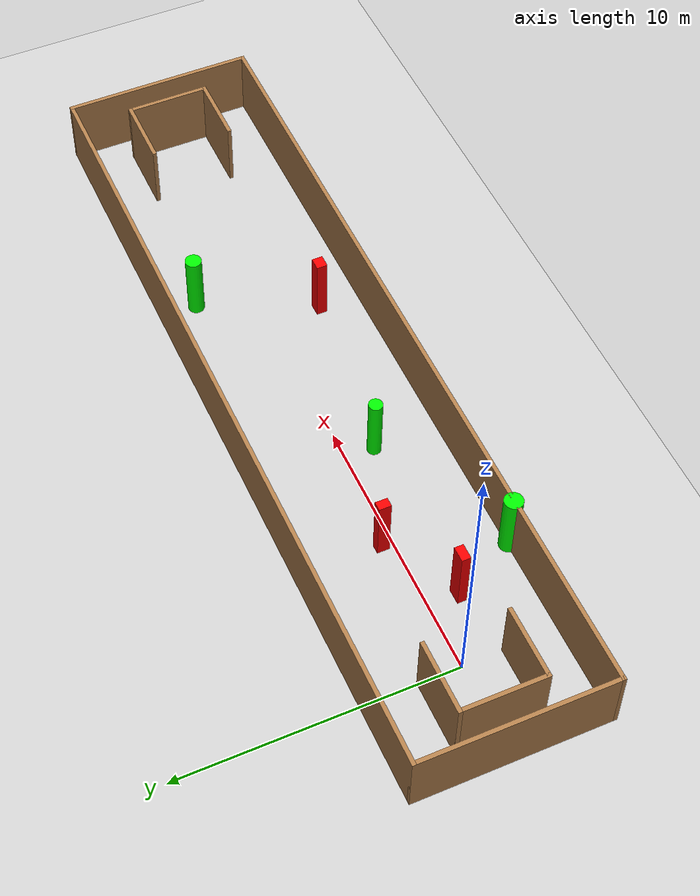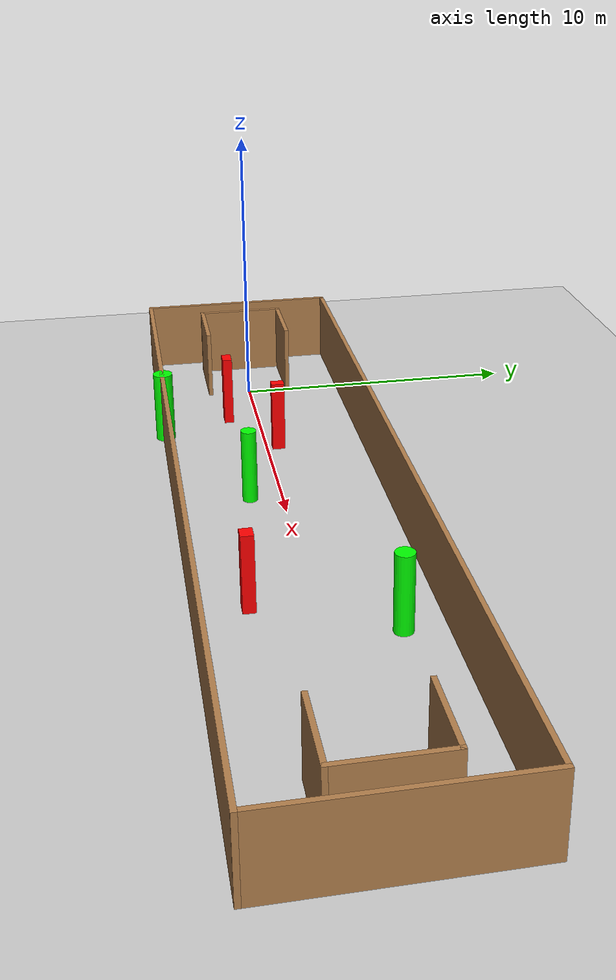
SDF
<sdf version="1.7">
 <world name="default">
  <light name="sun" type="directional">
   <pose>0 0 10 0 -0 0</pose>
   <diffuse>0.8 0.8 0.8 1</diffuse>
   <specular>0.2 0.2 0.2 1</specular>
   <attenuation>
    <range>1000</range>
    <constant>0.9</constant>
    <linear>0.01</linear>
    <quadratic>0.001</quadratic>
   </attenuation>
   <direction>-0.5 0.1 -0.9</direction>
   <spot><inner_angle>0</inner_angle><outer_angle>0</outer_angle><falloff>0</falloff></spot>
  </light>
  <model name="ground_plane">
   <static>1</static>
   <link name="link">
    <collision name="collision">
     <geometry><plane><normal>0 0 1</normal><size>100 100</size></plane></geometry>
     <surface>
      <contact><collide_bitmask>65535</collide_bitmask></contact>
      <friction><ode><mu>100</mu><mu2>50</mu2></ode></friction>
     </surface>
    </collision>
    <visual name="visual">
     <cast_shadows>0</cast_shadows>
     <geometry><plane><normal>0 0 1</normal><size>100 100</size></plane></geometry>
     <material>
      <script><uri>file://media/materials/scripts/gazebo.material</uri><name>Gazebo/Grey</name></script>
     </material>
    </visual>
   </link>
  </model>
  <gravity>0 0 -9.8</gravity>
  <magnetic_field>6e-06 2.3e-05 -4.2e-05</magnetic_field>
  <atmosphere type="adiabatic"/>
  <physics type="ode">
   <max_step_size>0.001</max_step_size>
   <real_time_factor>1</real_time_factor>
   <real_time_update_rate>1000</real_time_update_rate>
  </physics>
  <scene><ambient>0.4 0.4 0.4 1</ambient><background>0.7 0.7 0.7 1</background><shadows>1</shadows></scene>
  <spherical_coordinates>
   <surface_model>EARTH_WGS84</surface_model>
   <latitude_deg>0</latitude_deg>
   <longitude_deg>0</longitude_deg>
   <elevation>0</elevation>
   <heading_deg>0</heading_deg>
  </spherical_coordinates>
  <model name="my_base_walls">
   <link name="Wall_0">
    <collision name="Wall_0_Collision">
     <geometry><box><size>7.15 0.15 2.5</size></box></geometry>
     <pose>0 0 1.25 0 -0 0</pose>
    </collision>
    <visual name="Wall_0_Visual">
     <pose>0 0 1.25 0 -0 0</pose>
     <geometry><box><size>7.15 0.15 2.5</size></box></geometry>
     <material>
      <script><uri>file://media/materials/scripts/gazebo.material</uri><name>Gazebo/Wood</name></script>
      <ambient>1 1 1 1</ambient>
     </material>
     <meta><layer>0</layer></meta>
    </visual>
    <pose>-15 0 0 0 -0 1.5708</pose>
   </link>
   <link name="Wall_10">
    <collision name="Wall_10_Collision">
     <geometry><box><size>2.65 0.15 2.5</size></box></geometry>
     <pose>0 0 1.25 0 -0 0</pose>
    </collision>
    <visual name="Wall_10_Visual">
     <pose>0 0 1.25 0 -0 0</pose>
     <geometry><box><size>2.65 0.15 2.5</size></box></geometry>
     <material>
      <script><uri>file://media/materials/scripts/gazebo.material</uri><name>Gazebo/Wood</name></script>
      <ambient>1 1 1 1</ambient>
     </material>
     <meta><layer>0</layer></meta>
    </visual>
    <pose>-12.75 -1.5 0 0 -0 0</pose>
   </link>
   <link name="Wall_12">
    <collision name="Wall_12_Collision">
     <geometry><box><size>2.65 0.15 2.5</size></box></geometry>
     <pose>0 0 1.25 0 -0 0</pose>
    </collision>
    <visual name="Wall_12_Visual">
     <pose>0 0 1.25 0 -0 0</pose>
     <geometry><box><size>2.65 0.15 2.5</size></box></geometry>
     <material>
      <script><uri>file://media/materials/scripts/gazebo.material</uri><name>Gazebo/Wood</name></script>
      <ambient>1 1 1 1</ambient>
     </material>
     <meta><layer>0</layer></meta>
    </visual>
    <pose>-12.75 1.5 0 0 -0 0</pose>
   </link>
   <link name="Wall_14">
    <collision name="Wall_14_Collision">
     <geometry><box><size>3.15 0.15 2.5</size></box></geometry>
     <pose>0 0 1.25 0 -0 0</pose>
    </collision>
    <visual name="Wall_14_Visual">
     <pose>0 0 1.25 0 -0 0</pose>
     <geometry><box><size>3.15 0.15 2.5</size></box></geometry>
     <material>
      <script><uri>file://media/materials/scripts/gazebo.material</uri><name>Gazebo/Wood</name></script>
      <ambient>1 1 1 1</ambient>
     </material>
     <meta><layer>0</layer></meta>
    </visual>
    <pose>14 0 0 0 -0 -1.5708</pose>
   </link>
   <link name="Wall_15">
    <collision name="Wall_15_Collision">
     <geometry><box><size>2.65 0.15 2.5</size></box></geometry>
     <pose>0 0 1.25 0 -0 0</pose>
    </collision>
    <visual name="Wall_15_Visual">
     <pose>0 0 1.25 0 -0 0</pose>
     <geometry><box><size>2.65 0.15 2.5</size></box></geometry>
     <material>
      <script><uri>file://media/materials/scripts/gazebo.material</uri><name>Gazebo/Wood</name></script>
      <ambient>1 1 1 1</ambient>
     </material>
     <meta><layer>0</layer></meta>
    </visual>
    <pose>12.75 -1.5 0 0 -0 3.14159</pose>
   </link>
   <link name="Wall_17">
    <collision name="Wall_17_Collision">
     <geometry><box><size>2.65 0.15 2.5</size></box></geometry>
     <pose>0 0 1.25 0 -0 0</pose>
    </collision>
    <visual name="Wall_17_Visual">
     <pose>0 0 1.25 0 -0 0</pose>
     <geometry><box><size>2.65 0.15 2.5</size></box></geometry>
     <material>
      <script><uri>file://media/materials/scripts/gazebo.material</uri><name>Gazebo/Wood</name></script>
      <ambient>1 1 1 1</ambient>
     </material>
     <meta><layer>0</layer></meta>
    </visual>
    <pose>12.75 1.5 0 0 -0 3.14159</pose>
   </link>
   <link name="Wall_2">
    <collision name="Wall_2_Collision">
     <geometry><box><size>30.15 0.15 2.5</size></box></geometry>
     <pose>0 0 1.25 0 -0 0</pose>
    </collision>
    <visual name="Wall_2_Visual">
     <pose>0 0 1.25 0 -0 0</pose>
     <geometry><box><size>30.15 0.15 2.5</size></box></geometry>
     <material>
      <script><uri>file://media/materials/scripts/gazebo.material</uri><name>Gazebo/Wood</name></script>
      <ambient>1 1 1 1</ambient>
     </material>
     <meta><layer>0</layer></meta>
    </visual>
    <pose>-0 -3.5 0 0 -0 0</pose>
   </link>
   <link name="Wall_4">
    <collision name="Wall_4_Collision">
     <geometry><box><size>30.15 0.15 2.5</size></box></geometry>
     <pose>0 0 1.25 0 -0 0</pose>
    </collision>
    <visual name="Wall_4_Visual">
     <pose>0 0 1.25 0 -0 0</pose>
     <geometry><box><size>30.15 0.15 2.5</size></box></geometry>
     <material>
      <script><uri>file://media/materials/scripts/gazebo.material</uri><name>Gazebo/Wood</name></script>
      <ambient>1 1 1 1</ambient>
     </material>
     <meta><layer>0</layer></meta>
    </visual>
    <pose>-0 3.5 0 0 -0 0</pose>
   </link>
   <link name="Wall_6">
    <collision name="Wall_6_Collision">
     <geometry><box><size>7.15 0.15 2.5</size></box></geometry>
     <pose>0 0 1.25 0 -0 0</pose>
    </collision>
    <visual name="Wall_6_Visual">
     <pose>0 0 1.25 0 -0 0</pose>
     <geometry><box><size>7.15 0.15 2.5</size></box></geometry>
     <material>
      <script><uri>file://media/materials/scripts/gazebo.material</uri><name>Gazebo/Wood</name></script>
      <ambient>1 1 1 1</ambient>
     </material>
     <meta><layer>0</layer></meta>
    </visual>
    <pose>15 0 0 0 -0 -1.5708</pose>
   </link>
   <link name="Wall_9">
    <collision name="Wall_9_Collision">
     <geometry><box><size>3.15 0.15 2.5</size></box></geometry>
     <pose>0 0 1.25 0 -0 0</pose>
    </collision>
    <visual name="Wall_9_Visual">
     <pose>0 0 1.25 0 -0 0</pose>
     <geometry><box><size>3.15 0.15 2.5</size></box></geometry>
     <material>
      <script><uri>file://media/materials/scripts/gazebo.material</uri><name>Gazebo/Wood</name></script>
      <ambient>1 1 1 1</ambient>
     </material>
     <meta><layer>0</layer></meta>
    </visual>
    <pose>-14 0 0 0 -0 -1.5708</pose>
   </link>
   <static>1</static>
   <pose>11.5 0 0 0 -0 0</pose>
  </model>
  <model name="cylinder1">
   <static>1</static>
   <link name="link">
    <inertial>
     <mass>1</mass>
     <inertia><ixx>0.5</ixx><ixy>0</ixy><ixz>0</ixz><iyy>0.5</iyy><iyz>0</iyz><izz>1</izz></inertia>
    </inertial>
    <collision name="collision">
     <geometry><cylinder><radius>0.3356253164284834</radius><length>2.5</length></cylinder></geometry>
    </collision>
    <visual name="visual">
     <geometry><cylinder><radius>0.3356253164284834</radius><length>2.5</length></cylinder></geometry>
     <material>
      <ambient>0 1 0 1</ambient>
      <diffuse>0 1 0 1</diffuse>
      <specular>0.1 0.1 0.1 1</specular>
      <emissive>0 0 0 0</emissive>
     </material>
    </visual>
   </link>
   <pose>3.587234197666323 -3.4715395986737385 1.25 0 0 0</pose>
  </model>
  <model name="cylinder2">
   <static>1</static>
   <link name="link">
    <inertial>
     <mass>1</mass>
     <inertia><ixx>0.5</ixx><ixy>0</ixy><ixz>0</ixz><iyy>0.5</iyy><iyz>0</iyz><izz>1</izz></inertia>
    </inertial>
    <collision name="collision">
     <geometry><cylinder><radius>0.2516322093124912</radius><length>2.5</length></cylinder></geometry>
    </collision>
    <visual name="visual">
     <geometry><cylinder><radius>0.2516322093124912</radius><length>2.5</length></cylinder></geometry>
     <material>
      <ambient>0 1 0 1</ambient>
      <diffuse>0 1 0 1</diffuse>
      <specular>0.1 0.1 0.1 1</specular>
      <emissive>0 0 0 0</emissive>
     </material>
    </visual>
   </link>
   <pose>8.914396115081832 -1.0553657311784348 1.25 0 0 0</pose>
  </model>
  <model name="cylinder3">
   <static>1</static>
   <link name="link">
    <inertial>
     <mass>1</mass>
     <inertia><ixx>0.5</ixx><ixy>0</ixy><ixz>0</ixz><iyy>0.5</iyy><iyz>0</iyz><izz>1</izz></inertia>
    </inertial>
    <collision name="collision">
     <geometry><cylinder><radius>0.29831329846707844</radius><length>2.5</length></cylinder></geometry>
    </collision>
    <visual name="visual">
     <geometry><cylinder><radius>0.29831329846707844</radius><length>2.5</length></cylinder></geometry>
     <material>
      <ambient>0 1 0 1</ambient>
      <diffuse>0 1 0 1</diffuse>
      <specular>0.1 0.1 0.1 1</specular>
      <emissive>0 0 0 0</emissive>
     </material>
    </visual>
   </link>
   <pose>17.37038243814908 2.1531320842915305 1.25 0 0 0</pose>
  </model>
  <model name="box1">
   <static>1</static>
   <link name="link">
    <inertial>
     <mass>1</mass>
     <inertia><ixx>0.083</ixx><ixy>0</ixy><ixz>0</ixz><iyy>0.083</iyy><iyz>0</iyz><izz>0.083</izz></inertia>
    </inertial>
    <collision name="collision">
     <geometry><box><size>0.5574467269037655 0.3255549505460055 2.5</size></box></geometry>
    </collision>
    <visual name="visual">
     <geometry><box><size>0.5574467269037655 0.3255549505460055 2.5</size></box></geometry>
     <material>
      <ambient>1 0 0 1</ambient>
      <diffuse>1 0 0 1</diffuse>
      <specular>0.1 0.1 0.1 1</specular>
      <emissive>0 0 0 0</emissive>
     </material>
    </visual>
    <sensor name="my_contact" type="contact">
     <contact><collision>box_collision</collision><topic>__default_topic__</topic></contact>
    </sensor>
   </link>
   <pose>2.4618173336027844 -1.0742555438740715 1.25 0 0 0</pose>
  </model>
  <model name="box2">
   <static>1</static>
   <link name="link">
    <inertial>
     <mass>1</mass>
     <inertia><ixx>0.083</ixx><ixy>0</ixy><ixz>0</ixz><iyy>0.083</iyy><iyz>0</iyz><izz>0.083</izz></inertia>
    </inertial>
    <collision name="collision">
     <geometry><box><size>0.33008184543761576 0.4444364609028549 2.5</size></box></geometry>
    </collision>
    <visual name="visual">
     <geometry><box><size>0.33008184543761576 0.4444364609028549 2.5</size></box></geometry>
     <material>
      <ambient>1 0 0 1</ambient>
      <diffuse>1 0 0 1</diffuse>
      <specular>0.1 0.1 0.1 1</specular>
      <emissive>0 0 0 0</emissive>
     </material>
    </visual>
    <sensor name="my_contact" type="contact">
     <contact><collision>box_collision</collision><topic>__default_topic__</topic></contact>
    </sensor>
   </link>
   <pose>5.153031109462358 0.4231733951061307 1.25 0 0 0</pose>
  </model>
  <model name="box3">
   <static>1</static>
   <link name="link">
    <inertial>
     <mass>1</mass>
     <inertia><ixx>0.083</ixx><ixy>0</ixy><ixz>0</ixz><iyy>0.083</iyy><iyz>0</iyz><izz>0.083</izz></inertia>
    </inertial>
    <collision name="collision">
     <geometry><box><size>0.46516095237238936 0.3931929213116685 2.5</size></box></geometry>
    </collision>
    <visual name="visual">
     <geometry><box><size>0.46516095237238936 0.3931929213116685 2.5</size></box></geometry>
     <material>
      <ambient>1 0 0 1</ambient>
      <diffuse>1 0 0 1</diffuse>
      <specular>0.1 0.1 0.1 1</specular>
      <emissive>0 0 0 0</emissive>
     </material>
    </visual>
    <sensor name="my_contact" type="contact">
     <contact><collision>box_collision</collision><topic>__default_topic__</topic></contact>
    </sensor>
   </link>
   <pose>15.491807105309164 -1.916391691776881 1.25 0 0 0</pose>
  </model>
 </world>
</sdf>
